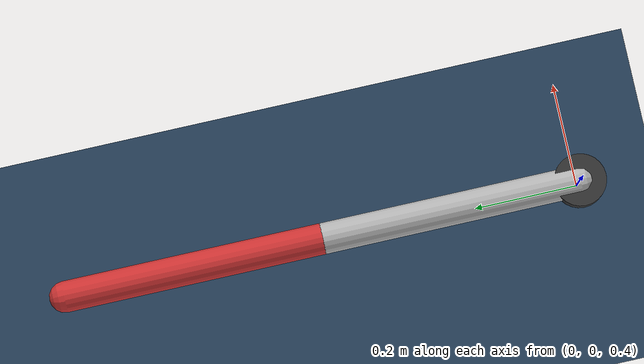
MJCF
<mujoco model="2_link_planar">
    <option timestep="0.002" gravity="0 0 -9.81"/>

    <visual>
        <headlight diffuse="0.6 0.6 0.6" ambient="0.3 0.3 0.3" specular="0 0 0"/>
        <rgba haze="0.15 0.25 0.35 1"/>
        <global azimuth="120" elevation="-20"/>
    </visual>

    <asset>
        <texture type="skybox" builtin="gradient" rgb1="0.3 0.5 0.7" rgb2="0 0 0" width="512" height="3072"/>
        <texture type="2d" name="groundplane" builtin="checker" mark="edge" rgb1="0.2 0.3 0.4" rgb2="0.1 0.2 0.3"
          markrgb="0.8 0.8 0.8" width="300" height="300"/>
        <material name="groundplane" texture="groundplane" texuniform="true" texrepeat="5 5" reflectance="0.2"/>
    </asset>

    <worldbody>
        <light pos="0 0 3" dir="0 0 -1" directional="true"/>
        <geom name="floor" size="0 0 0.05" type="plane" material="groundplane" pos="0 0 -1.0"/>

        <body name="base" pos="0 0 0.5">
            <geom type="cylinder" size="0.05 0.02" rgba="0.2 0.2 0.2 1"/>
            <body name="link1" pos="0 0 0">
                <joint name="joint1" type="hinge" axis="1 0 0" damping="0.1"/>
                <geom type="capsule" fromto="0 0 0 0 0.5 0" size="0.03" rgba="0.7 0.7 0.7 1" mass="1.0"/>

                <body name="link2" pos="0 0.5 0">
                    <joint name="joint2" type="hinge" axis="1 0 0" damping="0.1"/>
                    <geom type="capsule" fromto="0 0 0 0 0.5 0" size="0.03" rgba="0.8 0.2 0.2 1" mass="2.0"/>
                </body>
            </body>
        </body>
    </worldbody>

    <actuator>
        <general joint="joint1" dyntype="none" biastype="none" gainprm="1" name="motor1" forcerange="-100 100"/>
        <general joint="joint2" dyntype="none" biastype="none" gainprm="1" name="motor2" forcerange="-100 100"/>
    </actuator>
</mujoco>
